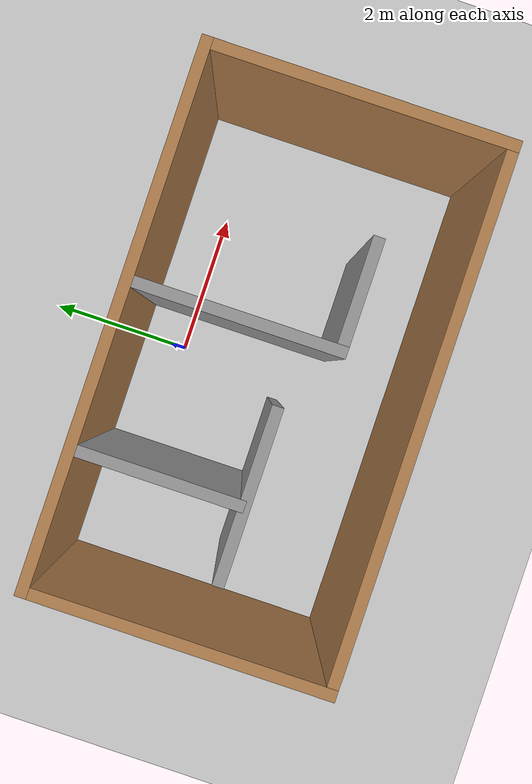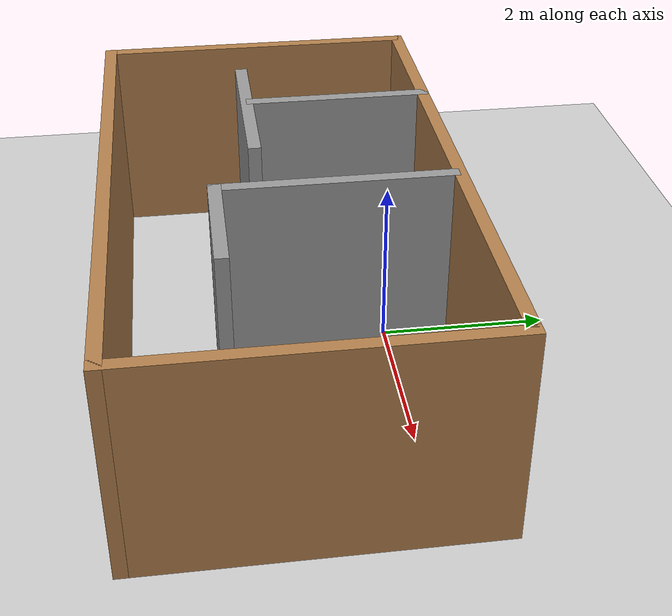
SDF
<sdf version="1.7">
 <world name="default">
  <light name="sun" type="directional">
   <pose>0 0 10 0 -0 0</pose>
   <diffuse>0.8 0.8 0.8 1</diffuse>
   <specular>0.2 0.2 0.2 1</specular>
   <attenuation>
    <range>1000</range>
    <constant>0.9</constant>
    <linear>0.01</linear>
    <quadratic>0.001</quadratic>
   </attenuation>
   <direction>-0.5 0.1 -0.9</direction>
   <spot><inner_angle>0</inner_angle><outer_angle>0</outer_angle><falloff>0</falloff></spot>
  </light>
  <model name="ground_plane">
   <static>1</static>
   <link name="link">
    <collision name="collision">
     <geometry><plane><normal>0 0 1</normal><size>100 100</size></plane></geometry>
     <surface><friction><ode><mu>100</mu><mu2>50</mu2></ode></friction></surface>
    </collision>
    <visual name="visual">
     <cast_shadows>0</cast_shadows>
     <geometry><plane><normal>0 0 1</normal><size>100 100</size></plane></geometry>
     <material>
      <script><uri>file://media/materials/scripts/gazebo.material</uri><name>Gazebo/Grey</name></script>
     </material>
    </visual>
   </link>
  </model>
  <gravity>0 0 -9.8</gravity>
  <magnetic_field>6e-06 2.3e-05 -4.2e-05</magnetic_field>
  <atmosphere type="adiabatic"/>
  <physics type="ode">
   <max_step_size>0.001</max_step_size>
   <real_time_factor>1</real_time_factor>
   <real_time_update_rate>1000</real_time_update_rate>
  </physics>
  <scene><ambient>0.4 0.4 0.4 1</ambient><background>0.7 0.7 0.7 1</background><shadows>1</shadows></scene>
  <audio><device>default</device></audio>
  <spherical_coordinates>
   <surface_model>EARTH_WGS84</surface_model>
   <latitude_deg>0</latitude_deg>
   <longitude_deg>0</longitude_deg>
   <elevation>0</elevation>
   <heading_deg>0</heading_deg>
  </spherical_coordinates>
  <model name="house">
   <pose>0.09172 -0.078206 0 0 -0 0</pose>
   <link name="Wall_0">
    <collision name="Wall_0_Collision">
     <geometry><box><size>7 0.15 2.5</size></box></geometry>
     <pose>0 0 1.25 0 -0 0</pose>
    </collision>
    <visual name="Wall_0_Visual">
     <pose>0 0 1.25 0 -0 0</pose>
     <geometry><box><size>7 0.15 2.5</size></box></geometry>
     <material>
      <script><uri>file://media/materials/scripts/gazebo.material</uri><name>Gazebo/Wood</name></script>
      <ambient>1 1 1 1</ambient>
     </material>
     <meta><layer>0</layer></meta>
    </visual>
    <pose>0 0.7725 0 0 -0 0</pose>
   </link>
   <link name="Wall_1">
    <collision name="Wall_1_Collision">
     <geometry><box><size>4 0.15 2.5</size></box></geometry>
     <pose>0 0 1.25 0 -0 0</pose>
    </collision>
    <visual name="Wall_1_Visual">
     <pose>0 0 1.25 0 -0 0</pose>
     <geometry><box><size>4 0.15 2.5</size></box></geometry>
     <material>
      <script><uri>file://media/materials/scripts/gazebo.material</uri><name>Gazebo/Wood</name></script>
      <ambient>1 1 1 1</ambient>
     </material>
     <meta><layer>0</layer></meta>
    </visual>
    <pose>3.425 -1.1525 0 0 -0 -1.5708</pose>
   </link>
   <link name="Wall_10">
    <collision name="Wall_10_Collision">
     <geometry><box><size>2.25 0.15 2.5</size></box></geometry>
     <pose>0 0 1.25 0 -0 0</pose>
    </collision>
    <visual name="Wall_10_Visual">
     <pose>0 0 1.25 0 -0 0</pose>
     <geometry><box><size>2.25 0.15 2.5</size></box></geometry>
     <material>
      <script><uri>file://media/materials/scripts/gazebo.material</uri><name>Gazebo/Grey</name></script>
      <ambient>1 1 1 1</ambient>
     </material>
     <meta><layer>0</layer></meta>
    </visual>
    <pose>-1.645 -0.2875 0 0 -0 -1.5708</pose>
   </link>
   <link name="Wall_12">
    <collision name="Wall_12_Collision">
     <geometry><box><size>2.75 0.15 2.5</size></box></geometry>
     <pose>0 0 1.25 0 -0 0</pose>
    </collision>
    <visual name="Wall_12_Visual">
     <pose>0 0 1.25 0 -0 0</pose>
     <geometry><box><size>2.75 0.15 2.5</size></box></geometry>
     <material>
      <script><uri>file://media/materials/scripts/gazebo.material</uri><name>Gazebo/Grey</name></script>
      <ambient>1 1 1 1</ambient>
     </material>
     <meta><layer>0</layer></meta>
    </visual>
    <pose>0.465 -0.6075 0 0 -0 -1.5708</pose>
   </link>
   <link name="Wall_13">
    <collision name="Wall_13_Collision">
     <geometry><box><size>1.5 0.15 2.5</size></box></geometry>
     <pose>0 0 1.25 0 -0 0</pose>
    </collision>
    <visual name="Wall_13_Visual">
     <pose>0 0 1.25 0 -0 0</pose>
     <geometry><box><size>1.5 0.15 2.5</size></box></geometry>
     <material>
      <script><uri>file://media/materials/scripts/gazebo.material</uri><name>Gazebo/Grey</name></script>
      <ambient>1 1 1 1</ambient>
     </material>
     <meta><layer>0</layer></meta>
    </visual>
    <pose>1.14 -1.9075 0 0 -0 0</pose>
   </link>
   <link name="Wall_15">
    <collision name="Wall_15_Collision">
     <geometry><box><size>2.25 0.15 2.5</size></box></geometry>
     <pose>0 0 1.25 0 -0 0</pose>
    </collision>
    <visual name="Wall_15_Visual">
     <pose>0 0 1.25 0 -0 0</pose>
     <geometry><box><size>2.25 0.15 2.5</size></box></geometry>
     <material>
      <script><uri>file://media/materials/scripts/gazebo.material</uri><name>Gazebo/Grey</name></script>
      <ambient>1 1 1 1</ambient>
     </material>
     <meta><layer>0</layer></meta>
    </visual>
    <pose>-1.515 -1.4075 0 0 -0 0</pose>
   </link>
   <link name="Wall_5">
    <collision name="Wall_5_Collision">
     <geometry><box><size>4 0.15 2.5</size></box></geometry>
     <pose>0 0 1.25 0 -0 0</pose>
    </collision>
    <visual name="Wall_5_Visual">
     <pose>0 0 1.25 0 -0 0</pose>
     <geometry><box><size>4 0.15 2.5</size></box></geometry>
     <material>
      <script><uri>file://media/materials/scripts/gazebo.material</uri><name>Gazebo/Wood</name></script>
      <ambient>1 1 1 1</ambient>
     </material>
     <meta><layer>0</layer></meta>
    </visual>
    <pose>-3.425 -1.1525 0 0 -0 -1.5708</pose>
   </link>
   <link name="Wall_8">
    <collision name="Wall_8_Collision">
     <geometry><box><size>7 0.15 2.5</size></box></geometry>
     <pose>0 0 1.25 0 -0 0</pose>
    </collision>
    <visual name="Wall_8_Visual">
     <pose>0 0 1.25 0 -0 0</pose>
     <geometry><box><size>7 0.15 2.5</size></box></geometry>
     <material>
      <script><uri>file://media/materials/scripts/gazebo.material</uri><name>Gazebo/Wood</name></script>
      <ambient>1 1 1 1</ambient>
     </material>
     <meta><layer>0</layer></meta>
    </visual>
    <pose>0 -3.0775 0 0 -0 0</pose>
   </link>
   <static>1</static>
  </model>
 </world>
</sdf>
